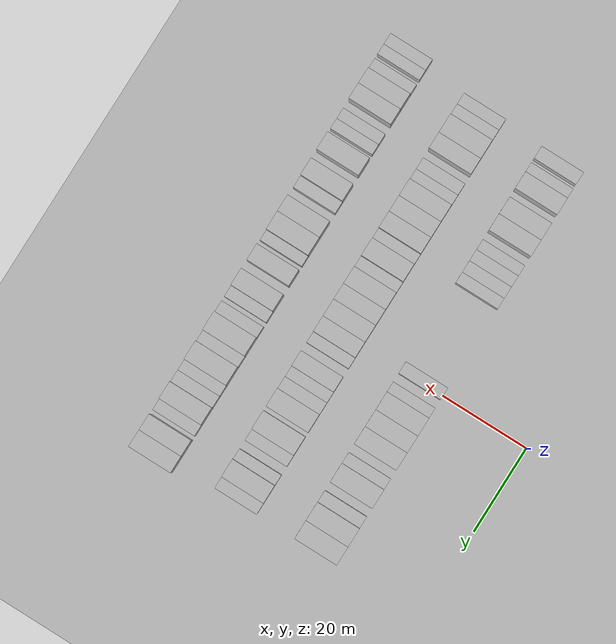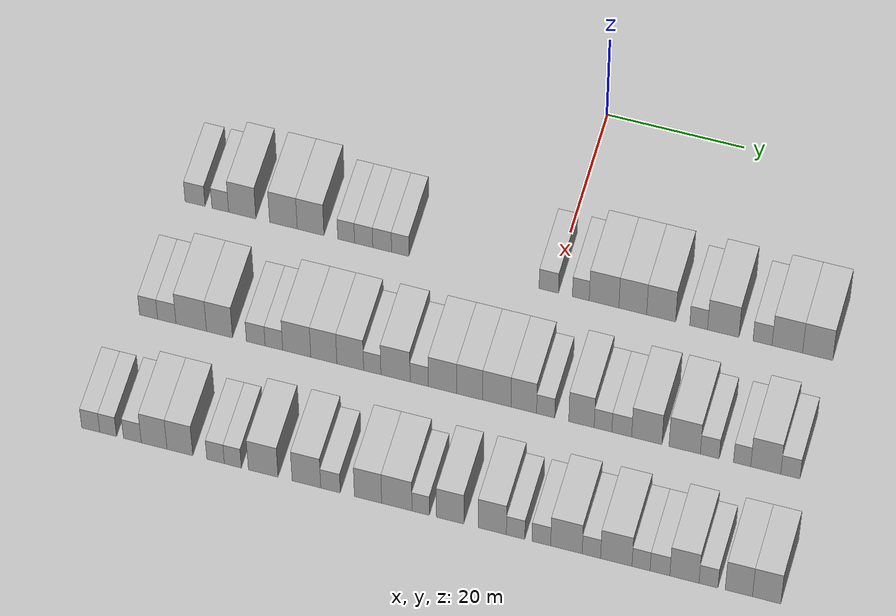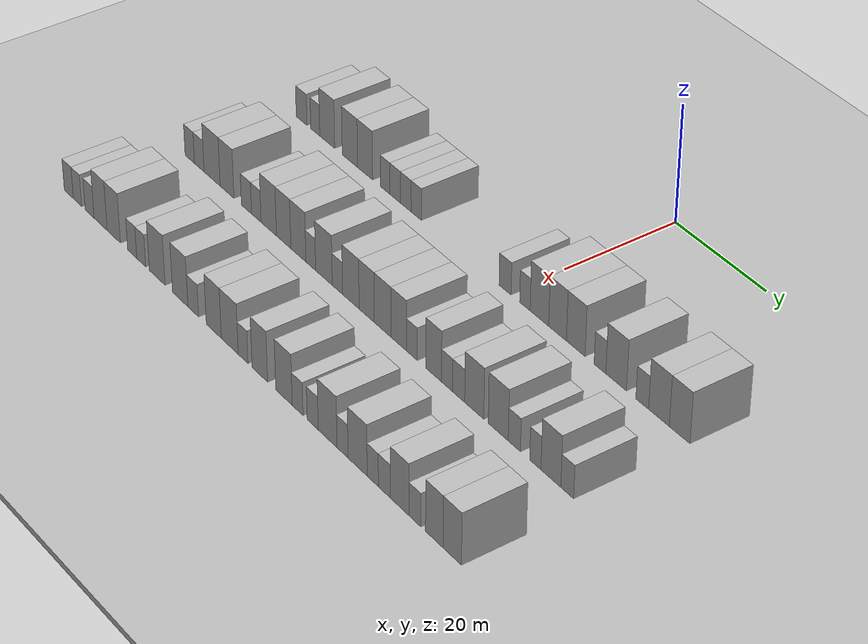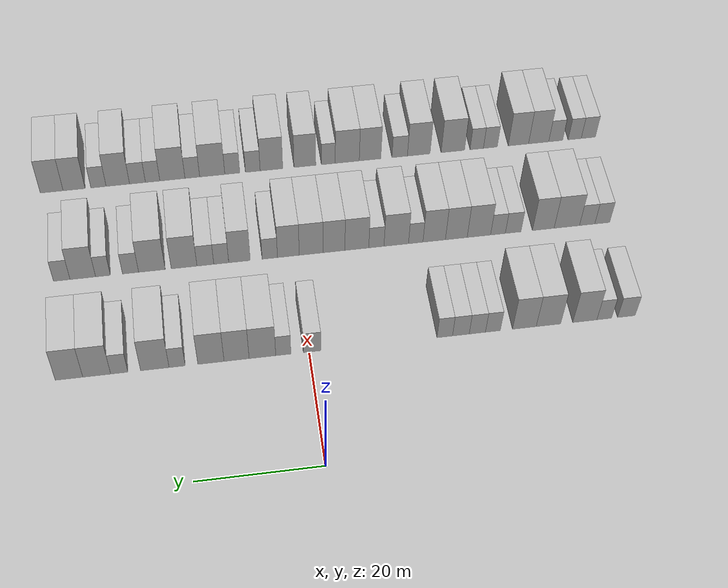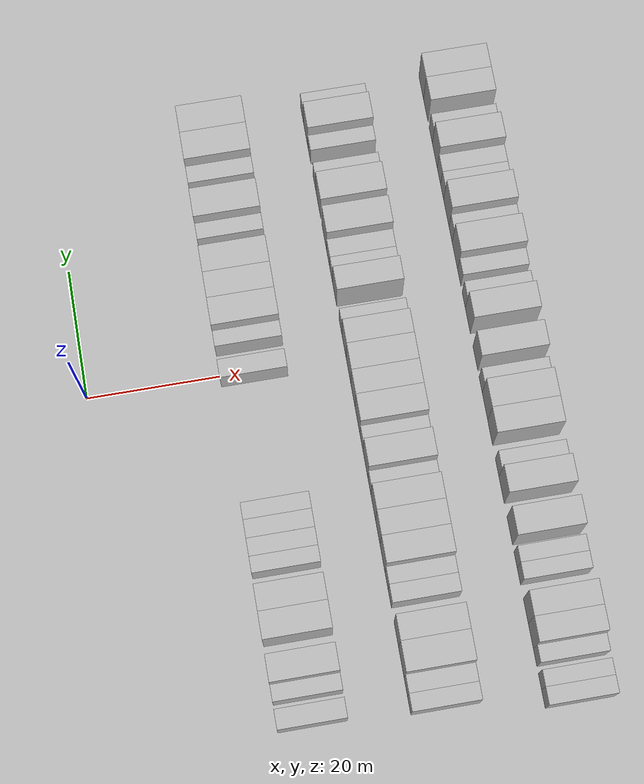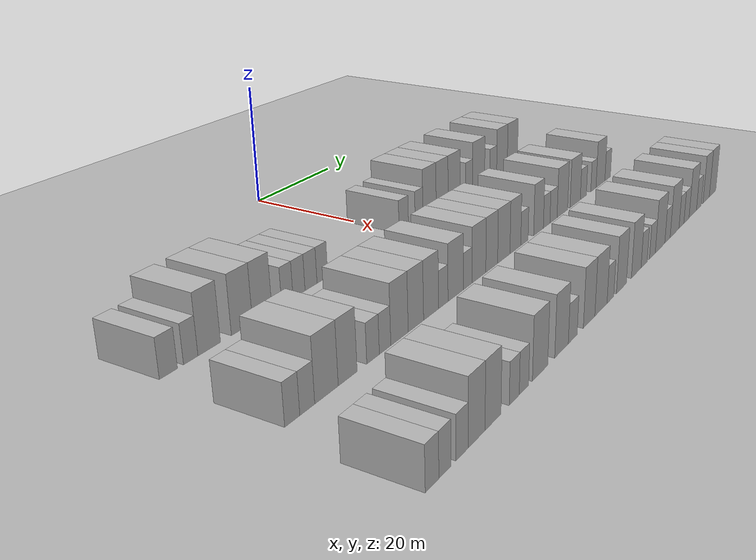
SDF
<sdf version="1.6">
 <world name="default">
  <include><name>ground_plane_1</name><uri>model://HANNAS_ground_plane</uri></include>
  <include>
   <name>ground_plane_2</name>
   <uri>model://HANNAS_ground_plane</uri>
   <pose>100 0 0  0 0 0</pose>
  </include>
  <model name="building_47">
   <static>1</static>
   <pose>25.0000 -51.7509 0 0.000000 0.000000 0.000000</pose>
   <link name="link">
    <pose>0 0 3.00 0 0 0</pose>
    <collision name="collision"><geometry><box><size>10.0000 2.9255 6.0000</size></box></geometry></collision>
    <visual name="visual">
     <cast_shadows>0</cast_shadows>
     <geometry><box><size>10.0000 2.9255 6.0000</size></box></geometry>
     <material>
      <script>
       <uri>model://HANNAS_wall/materials/scripts</uri>
       <uri>model://HANNAS_wall/materials/textures</uri>
       <name>vrc/HANNAS_wall</name>
      </script>
     </material>
    </visual>
   </link>
  </model>
  <model name="building_48">
   <static>1</static>
   <pose>25.0000 -48.0663 0 0.000000 0.000000 0.000000</pose>
   <link name="link">
    <pose>0 0 3.00 0 0 0</pose>
    <collision name="collision"><geometry><box><size>10.0000 2.4438 6.0000</size></box></geometry></collision>
    <visual name="visual">
     <cast_shadows>0</cast_shadows>
     <geometry><box><size>10.0000 2.4438 6.0000</size></box></geometry>
     <material>
      <script>
       <uri>model://HANNAS_wall/materials/scripts</uri>
       <uri>model://HANNAS_wall/materials/textures</uri>
       <name>vrc/HANNAS_wall</name>
      </script>
     </material>
    </visual>
   </link>
  </model>
  <model name="building_49">
   <static>1</static>
   <pose>25.0000 -44.8534 0 0.000000 0.000000 0.000000</pose>
   <link name="link">
    <pose>0 0 4.50 0 0 0</pose>
    <collision name="collision"><geometry><box><size>10.0000 3.9821 9.0000</size></box></geometry></collision>
    <visual name="visual">
     <cast_shadows>0</cast_shadows>
     <geometry><box><size>10.0000 3.9821 9.0000</size></box></geometry>
     <material>
      <script>
       <uri>model://HANNAS_wall/materials/scripts</uri>
       <uri>model://HANNAS_wall/materials/textures</uri>
       <name>vrc/HANNAS_wall</name>
      </script>
     </material>
    </visual>
   </link>
  </model>
  <model name="building_50">
   <static>1</static>
   <pose>25.0000 -38.8466 0 0.000000 0.000000 0.000000</pose>
   <link name="link">
    <pose>0 0 4.50 0 0 0</pose>
    <collision name="collision"><geometry><box><size>10.0000 4.0314 9.0000</size></box></geometry></collision>
    <visual name="visual">
     <cast_shadows>0</cast_shadows>
     <geometry><box><size>10.0000 4.0314 9.0000</size></box></geometry>
     <material>
      <script>
       <uri>model://HANNAS_wall/materials/scripts</uri>
       <uri>model://HANNAS_wall/materials/textures</uri>
       <name>vrc/HANNAS_wall</name>
      </script>
     </material>
    </visual>
   </link>
  </model>
  <model name="building_51">
   <static>1</static>
   <pose>25.0000 -34.8790 0 0.000000 0.000000 0.000000</pose>
   <link name="link">
    <pose>0 0 4.50 0 0 0</pose>
    <collision name="collision"><geometry><box><size>10.0000 3.9037 9.0000</size></box></geometry></collision>
    <visual name="visual">
     <cast_shadows>0</cast_shadows>
     <geometry><box><size>10.0000 3.9037 9.0000</size></box></geometry>
     <material>
      <script>
       <uri>model://HANNAS_wall/materials/scripts</uri>
       <uri>model://HANNAS_wall/materials/textures</uri>
       <name>vrc/HANNAS_wall</name>
      </script>
     </material>
    </visual>
   </link>
  </model>
  <model name="building_52">
   <static>1</static>
   <pose>25.0000 -29.7062 0 0.000000 0.000000 0.000000</pose>
   <link name="link">
    <pose>0 0 3.00 0 0 0</pose>
    <collision name="collision"><geometry><box><size>10.0000 2.4420 6.0000</size></box></geometry></collision>
    <visual name="visual">
     <cast_shadows>0</cast_shadows>
     <geometry><box><size>10.0000 2.4420 6.0000</size></box></geometry>
     <material>
      <script>
       <uri>model://HANNAS_wall/materials/scripts</uri>
       <uri>model://HANNAS_wall/materials/textures</uri>
       <name>vrc/HANNAS_wall</name>
      </script>
     </material>
    </visual>
   </link>
  </model>
  <model name="building_53">
   <static>1</static>
   <pose>25.0000 -27.1594 0 0.000000 0.000000 0.000000</pose>
   <link name="link">
    <pose>0 0 3.00 0 0 0</pose>
    <collision name="collision"><geometry><box><size>10.0000 2.6516 6.0000</size></box></geometry></collision>
    <visual name="visual">
     <cast_shadows>0</cast_shadows>
     <geometry><box><size>10.0000 2.6516 6.0000</size></box></geometry>
     <material>
      <script>
       <uri>model://HANNAS_wall/materials/scripts</uri>
       <uri>model://HANNAS_wall/materials/textures</uri>
       <name>vrc/HANNAS_wall</name>
      </script>
     </material>
    </visual>
   </link>
  </model>
  <model name="building_54">
   <static>1</static>
   <pose>25.0000 -24.4721 0 0.000000 0.000000 0.000000</pose>
   <link name="link">
    <pose>0 0 3.00 0 0 0</pose>
    <collision name="collision"><geometry><box><size>10.0000 2.7231 6.0000</size></box></geometry></collision>
    <visual name="visual">
     <cast_shadows>0</cast_shadows>
     <geometry><box><size>10.0000 2.7231 6.0000</size></box></geometry>
     <material>
      <script>
       <uri>model://HANNAS_wall/materials/scripts</uri>
       <uri>model://HANNAS_wall/materials/textures</uri>
       <name>vrc/HANNAS_wall</name>
      </script>
     </material>
    </visual>
   </link>
  </model>
  <model name="building_55">
   <static>1</static>
   <pose>25.0000 -21.8469 0 0.000000 0.000000 0.000000</pose>
   <link name="link">
    <pose>0 0 3.00 0 0 0</pose>
    <collision name="collision"><geometry><box><size>10.0000 2.5272 6.0000</size></box></geometry></collision>
    <visual name="visual">
     <cast_shadows>0</cast_shadows>
     <geometry><box><size>10.0000 2.5272 6.0000</size></box></geometry>
     <material>
      <script>
       <uri>model://HANNAS_wall/materials/scripts</uri>
       <uri>model://HANNAS_wall/materials/textures</uri>
       <name>vrc/HANNAS_wall</name>
      </script>
     </material>
    </visual>
   </link>
  </model>
  <model name="building_56">
   <static>1</static>
   <pose>25.0000 -0.3898 0 0.000000 0.000000 0.000000</pose>
   <link name="link">
    <pose>0 0 3.00 0 0 0</pose>
    <collision name="collision"><geometry><box><size>10.0000 2.7957 6.0000</size></box></geometry></collision>
    <visual name="visual">
     <cast_shadows>0</cast_shadows>
     <geometry><box><size>10.0000 2.7957 6.0000</size></box></geometry>
     <material>
      <script>
       <uri>model://HANNAS_wall/materials/scripts</uri>
       <uri>model://HANNAS_wall/materials/textures</uri>
       <name>vrc/HANNAS_wall</name>
      </script>
     </material>
    </visual>
   </link>
  </model>
  <model name="building_57">
   <static>1</static>
   <pose>25.0000 4.2181 0 0.000000 0.000000 0.000000</pose>
   <link name="link">
    <pose>0 0 3.00 0 0 0</pose>
    <collision name="collision"><geometry><box><size>10.0000 2.4200 6.0000</size></box></geometry></collision>
    <visual name="visual">
     <cast_shadows>0</cast_shadows>
     <geometry><box><size>10.0000 2.4200 6.0000</size></box></geometry>
     <material>
      <script>
       <uri>model://HANNAS_wall/materials/scripts</uri>
       <uri>model://HANNAS_wall/materials/textures</uri>
       <name>vrc/HANNAS_wall</name>
      </script>
     </material>
    </visual>
   </link>
  </model>
  <model name="building_58">
   <static>1</static>
   <pose>25.0000 7.5503 0 0.000000 0.000000 0.000000</pose>
   <link name="link">
    <pose>0 0 4.50 0 0 0</pose>
    <collision name="collision"><geometry><box><size>10.0000 4.2445 9.0000</size></box></geometry></collision>
    <visual name="visual">
     <cast_shadows>0</cast_shadows>
     <geometry><box><size>10.0000 4.2445 9.0000</size></box></geometry>
     <material>
      <script>
       <uri>model://HANNAS_wall/materials/scripts</uri>
       <uri>model://HANNAS_wall/materials/textures</uri>
       <name>vrc/HANNAS_wall</name>
      </script>
     </material>
    </visual>
   </link>
  </model>
  <model name="building_59">
   <static>1</static>
   <pose>25.0000 11.6644 0 0.000000 0.000000 0.000000</pose>
   <link name="link">
    <pose>0 0 4.50 0 0 0</pose>
    <collision name="collision"><geometry><box><size>10.0000 3.9837 9.0000</size></box></geometry></collision>
    <visual name="visual">
     <cast_shadows>0</cast_shadows>
     <geometry><box><size>10.0000 3.9837 9.0000</size></box></geometry>
     <material>
      <script>
       <uri>model://HANNAS_wall/materials/scripts</uri>
       <uri>model://HANNAS_wall/materials/textures</uri>
       <name>vrc/HANNAS_wall</name>
      </script>
     </material>
    </visual>
   </link>
  </model>
  <model name="building_60">
   <static>1</static>
   <pose>25.0000 15.7348 0 0.000000 0.000000 0.000000</pose>
   <link name="link">
    <pose>0 0 4.50 0 0 0</pose>
    <collision name="collision"><geometry><box><size>10.0000 4.1571 9.0000</size></box></geometry></collision>
    <visual name="visual">
     <cast_shadows>0</cast_shadows>
     <geometry><box><size>10.0000 4.1571 9.0000</size></box></geometry>
     <material>
      <script>
       <uri>model://HANNAS_wall/materials/scripts</uri>
       <uri>model://HANNAS_wall/materials/textures</uri>
       <name>vrc/HANNAS_wall</name>
      </script>
     </material>
    </visual>
   </link>
  </model>
  <model name="building_61">
   <static>1</static>
   <pose>25.0000 21.0873 0 0.000000 0.000000 0.000000</pose>
   <link name="link">
    <pose>0 0 3.00 0 0 0</pose>
    <collision name="collision"><geometry><box><size>10.0000 2.5480 6.0000</size></box></geometry></collision>
    <visual name="visual">
     <cast_shadows>0</cast_shadows>
     <geometry><box><size>10.0000 2.5480 6.0000</size></box></geometry>
     <material>
      <script>
       <uri>model://HANNAS_wall/materials/scripts</uri>
       <uri>model://HANNAS_wall/materials/textures</uri>
       <name>vrc/HANNAS_wall</name>
      </script>
     </material>
    </visual>
   </link>
  </model>
  <model name="building_62">
   <static>1</static>
   <pose>25.0000 24.6056 0 0.000000 0.000000 0.000000</pose>
   <link name="link">
    <pose>0 0 4.50 0 0 0</pose>
    <collision name="collision"><geometry><box><size>10.0000 4.4885 9.0000</size></box></geometry></collision>
    <visual name="visual">
     <cast_shadows>0</cast_shadows>
     <geometry><box><size>10.0000 4.4885 9.0000</size></box></geometry>
     <material>
      <script>
       <uri>model://HANNAS_wall/materials/scripts</uri>
       <uri>model://HANNAS_wall/materials/textures</uri>
       <name>vrc/HANNAS_wall</name>
      </script>
     </material>
    </visual>
   </link>
  </model>
  <model name="building_63">
   <static>1</static>
   <pose>25.0000 30.2030 0 0.000000 0.000000 0.000000</pose>
   <link name="link">
    <pose>0 0 3.00 0 0 0</pose>
    <collision name="collision"><geometry><box><size>10.0000 2.7063 6.0000</size></box></geometry></collision>
    <visual name="visual">
     <cast_shadows>0</cast_shadows>
     <geometry><box><size>10.0000 2.7063 6.0000</size></box></geometry>
     <material>
      <script>
       <uri>model://HANNAS_wall/materials/scripts</uri>
       <uri>model://HANNAS_wall/materials/textures</uri>
       <name>vrc/HANNAS_wall</name>
      </script>
     </material>
    </visual>
   </link>
  </model>
  <model name="building_64">
   <static>1</static>
   <pose>25.0000 33.7326 0 0.000000 0.000000 0.000000</pose>
   <link name="link">
    <pose>0 0 4.50 0 0 0</pose>
    <collision name="collision"><geometry><box><size>10.0000 4.3529 9.0000</size></box></geometry></collision>
    <visual name="visual">
     <cast_shadows>0</cast_shadows>
     <geometry><box><size>10.0000 4.3529 9.0000</size></box></geometry>
     <material>
      <script>
       <uri>model://HANNAS_wall/materials/scripts</uri>
       <uri>model://HANNAS_wall/materials/textures</uri>
       <name>vrc/HANNAS_wall</name>
      </script>
     </material>
    </visual>
   </link>
  </model>
  <model name="building_65">
   <static>1</static>
   <pose>25.0000 38.0556 0 0.000000 0.000000 0.000000</pose>
   <link name="link">
    <pose>0 0 4.50 0 0 0</pose>
    <collision name="collision"><geometry><box><size>10.0000 4.2929 9.0000</size></box></geometry></collision>
    <visual name="visual">
     <cast_shadows>0</cast_shadows>
     <geometry><box><size>10.0000 4.2929 9.0000</size></box></geometry>
     <material>
      <script>
       <uri>model://HANNAS_wall/materials/scripts</uri>
       <uri>model://HANNAS_wall/materials/textures</uri>
       <name>vrc/HANNAS_wall</name>
      </script>
     </material>
    </visual>
   </link>
  </model>
  <model name="building_165">
   <static>1</static>
   <pose>44.0000 -52.6446 0 0.000000 0.000000 0.000000</pose>
   <link name="link">
    <pose>0 0 3.00 0 0 0</pose>
    <collision name="collision"><geometry><box><size>10.0000 2.6040 6.0000</size></box></geometry></collision>
    <visual name="visual">
     <cast_shadows>0</cast_shadows>
     <geometry><box><size>10.0000 2.6040 6.0000</size></box></geometry>
     <material>
      <script>
       <uri>model://HANNAS_wall/materials/scripts</uri>
       <uri>model://HANNAS_wall/materials/textures</uri>
       <name>vrc/HANNAS_wall</name>
      </script>
     </material>
    </visual>
   </link>
  </model>
  <model name="building_166">
   <static>1</static>
   <pose>44.0000 -50.0094 0 0.000000 0.000000 0.000000</pose>
   <link name="link">
    <pose>0 0 3.00 0 0 0</pose>
    <collision name="collision"><geometry><box><size>10.0000 2.6663 6.0000</size></box></geometry></collision>
    <visual name="visual">
     <cast_shadows>0</cast_shadows>
     <geometry><box><size>10.0000 2.6663 6.0000</size></box></geometry>
     <material>
      <script>
       <uri>model://HANNAS_wall/materials/scripts</uri>
       <uri>model://HANNAS_wall/materials/textures</uri>
       <name>vrc/HANNAS_wall</name>
      </script>
     </material>
    </visual>
   </link>
  </model>
  <model name="building_167">
   <static>1</static>
   <pose>44.0000 -46.4680 0 0.000000 0.000000 0.000000</pose>
   <link name="link">
    <pose>0 0 4.50 0 0 0</pose>
    <collision name="collision"><geometry><box><size>10.0000 4.4165 9.0000</size></box></geometry></collision>
    <visual name="visual">
     <cast_shadows>0</cast_shadows>
     <geometry><box><size>10.0000 4.4165 9.0000</size></box></geometry>
     <material>
      <script>
       <uri>model://HANNAS_wall/materials/scripts</uri>
       <uri>model://HANNAS_wall/materials/textures</uri>
       <name>vrc/HANNAS_wall</name>
      </script>
     </material>
    </visual>
   </link>
  </model>
  <model name="building_168">
   <static>1</static>
   <pose>44.0000 -42.3781 0 0.000000 0.000000 0.000000</pose>
   <link name="link">
    <pose>0 0 4.50 0 0 0</pose>
    <collision name="collision"><geometry><box><size>10.0000 3.7632 9.0000</size></box></geometry></collision>
    <visual name="visual">
     <cast_shadows>0</cast_shadows>
     <geometry><box><size>10.0000 3.7632 9.0000</size></box></geometry>
     <material>
      <script>
       <uri>model://HANNAS_wall/materials/scripts</uri>
       <uri>model://HANNAS_wall/materials/textures</uri>
       <name>vrc/HANNAS_wall</name>
      </script>
     </material>
    </visual>
   </link>
  </model>
  <model name="building_169">
   <static>1</static>
   <pose>44.0000 -37.1449 0 0.000000 0.000000 0.000000</pose>
   <link name="link">
    <pose>0 0 3.00 0 0 0</pose>
    <collision name="collision"><geometry><box><size>10.0000 2.7031 6.0000</size></box></geometry></collision>
    <visual name="visual">
     <cast_shadows>0</cast_shadows>
     <geometry><box><size>10.0000 2.7031 6.0000</size></box></geometry>
     <material>
      <script>
       <uri>model://HANNAS_wall/materials/scripts</uri>
       <uri>model://HANNAS_wall/materials/textures</uri>
       <name>vrc/HANNAS_wall</name>
      </script>
     </material>
    </visual>
   </link>
  </model>
  <model name="building_170">
   <static>1</static>
   <pose>44.0000 -34.5231 0 0.000000 0.000000 0.000000</pose>
   <link name="link">
    <pose>0 0 3.00 0 0 0</pose>
    <collision name="collision"><geometry><box><size>10.0000 2.5406 6.0000</size></box></geometry></collision>
    <visual name="visual">
     <cast_shadows>0</cast_shadows>
     <geometry><box><size>10.0000 2.5406 6.0000</size></box></geometry>
     <material>
      <script>
       <uri>model://HANNAS_wall/materials/scripts</uri>
       <uri>model://HANNAS_wall/materials/textures</uri>
       <name>vrc/HANNAS_wall</name>
      </script>
     </material>
    </visual>
   </link>
  </model>
  <model name="building_171">
   <static>1</static>
   <pose>44.0000 -31.2356 0 0.000000 0.000000 0.000000</pose>
   <link name="link">
    <pose>0 0 4.50 0 0 0</pose>
    <collision name="collision"><geometry><box><size>10.0000 4.0344 9.0000</size></box></geometry></collision>
    <visual name="visual">
     <cast_shadows>0</cast_shadows>
     <geometry><box><size>10.0000 4.0344 9.0000</size></box></geometry>
     <material>
      <script>
       <uri>model://HANNAS_wall/materials/scripts</uri>
       <uri>model://HANNAS_wall/materials/textures</uri>
       <name>vrc/HANNAS_wall</name>
      </script>
     </material>
    </visual>
   </link>
  </model>
  <model name="building_172">
   <static>1</static>
   <pose>44.0000 -27.3459 0 0.000000 0.000000 0.000000</pose>
   <link name="link">
    <pose>0 0 4.50 0 0 0</pose>
    <collision name="collision"><geometry><box><size>10.0000 3.7450 9.0000</size></box></geometry></collision>
    <visual name="visual">
     <cast_shadows>0</cast_shadows>
     <geometry><box><size>10.0000 3.7450 9.0000</size></box></geometry>
     <material>
      <script>
       <uri>model://HANNAS_wall/materials/scripts</uri>
       <uri>model://HANNAS_wall/materials/textures</uri>
       <name>vrc/HANNAS_wall</name>
      </script>
     </material>
    </visual>
   </link>
  </model>
  <model name="building_173">
   <static>1</static>
   <pose>44.0000 -23.5475 0 0.000000 0.000000 0.000000</pose>
   <link name="link">
    <pose>0 0 4.50 0 0 0</pose>
    <collision name="collision"><geometry><box><size>10.0000 3.8520 9.0000</size></box></geometry></collision>
    <visual name="visual">
     <cast_shadows>0</cast_shadows>
     <geometry><box><size>10.0000 3.8520 9.0000</size></box></geometry>
     <material>
      <script>
       <uri>model://HANNAS_wall/materials/scripts</uri>
       <uri>model://HANNAS_wall/materials/textures</uri>
       <name>vrc/HANNAS_wall</name>
      </script>
     </material>
    </visual>
   </link>
  </model>
  <model name="building_174">
   <static>1</static>
   <pose>44.0000 -20.3873 0 0.000000 0.000000 0.000000</pose>
   <link name="link">
    <pose>0 0 3.00 0 0 0</pose>
    <collision name="collision"><geometry><box><size>10.0000 2.4683 6.0000</size></box></geometry></collision>
    <visual name="visual">
     <cast_shadows>0</cast_shadows>
     <geometry><box><size>10.0000 2.4683 6.0000</size></box></geometry>
     <material>
      <script>
       <uri>model://HANNAS_wall/materials/scripts</uri>
       <uri>model://HANNAS_wall/materials/textures</uri>
       <name>vrc/HANNAS_wall</name>
      </script>
     </material>
    </visual>
   </link>
  </model>
  <model name="building_175">
   <static>1</static>
   <pose>44.0000 -17.0578 0 0.000000 0.000000 0.000000</pose>
   <link name="link">
    <pose>0 0 4.50 0 0 0</pose>
    <collision name="collision"><geometry><box><size>10.0000 4.1907 9.0000</size></box></geometry></collision>
    <visual name="visual">
     <cast_shadows>0</cast_shadows>
     <geometry><box><size>10.0000 4.1907 9.0000</size></box></geometry>
     <material>
      <script>
       <uri>model://HANNAS_wall/materials/scripts</uri>
       <uri>model://HANNAS_wall/materials/textures</uri>
       <name>vrc/HANNAS_wall</name>
      </script>
     </material>
    </visual>
   </link>
  </model>
  <model name="building_176">
   <static>1</static>
   <pose>44.0000 -13.6695 0 0.000000 0.000000 0.000000</pose>
   <link name="link">
    <pose>0 0 3.00 0 0 0</pose>
    <collision name="collision"><geometry><box><size>10.0000 2.5860 6.0000</size></box></geometry></collision>
    <visual name="visual">
     <cast_shadows>0</cast_shadows>
     <geometry><box><size>10.0000 2.5860 6.0000</size></box></geometry>
     <material>
      <script>
       <uri>model://HANNAS_wall/materials/scripts</uri>
       <uri>model://HANNAS_wall/materials/textures</uri>
       <name>vrc/HANNAS_wall</name>
      </script>
     </material>
    </visual>
   </link>
  </model>
  <model name="building_177">
   <static>1</static>
   <pose>44.0000 -10.3403 0 0.000000 0.000000 0.000000</pose>
   <link name="link">
    <pose>0 0 4.50 0 0 0</pose>
    <collision name="collision"><geometry><box><size>10.0000 4.0724 9.0000</size></box></geometry></collision>
    <visual name="visual">
     <cast_shadows>0</cast_shadows>
     <geometry><box><size>10.0000 4.0724 9.0000</size></box></geometry>
     <material>
      <script>
       <uri>model://HANNAS_wall/materials/scripts</uri>
       <uri>model://HANNAS_wall/materials/textures</uri>
       <name>vrc/HANNAS_wall</name>
      </script>
     </material>
    </visual>
   </link>
  </model>
  <model name="building_178">
   <static>1</static>
   <pose>44.0000 -6.4540 0 0.000000 0.000000 0.000000</pose>
   <link name="link">
    <pose>0 0 4.50 0 0 0</pose>
    <collision name="collision"><geometry><box><size>10.0000 3.7000 9.0000</size></box></geometry></collision>
    <visual name="visual">
     <cast_shadows>0</cast_shadows>
     <geometry><box><size>10.0000 3.7000 9.0000</size></box></geometry>
     <material>
      <script>
       <uri>model://HANNAS_wall/materials/scripts</uri>
       <uri>model://HANNAS_wall/materials/textures</uri>
       <name>vrc/HANNAS_wall</name>
      </script>
     </material>
    </visual>
   </link>
  </model>
  <model name="building_179">
   <static>1</static>
   <pose>44.0000 -2.5977 0 0.000000 0.000000 0.000000</pose>
   <link name="link">
    <pose>0 0 4.50 0 0 0</pose>
    <collision name="collision"><geometry><box><size>10.0000 4.0126 9.0000</size></box></geometry></collision>
    <visual name="visual">
     <cast_shadows>0</cast_shadows>
     <geometry><box><size>10.0000 4.0126 9.0000</size></box></geometry>
     <material>
      <script>
       <uri>model://HANNAS_wall/materials/scripts</uri>
       <uri>model://HANNAS_wall/materials/textures</uri>
       <name>vrc/HANNAS_wall</name>
      </script>
     </material>
    </visual>
   </link>
  </model>
  <model name="building_180">
   <static>1</static>
   <pose>44.0000 1.2405 0 0.000000 0.000000 0.000000</pose>
   <link name="link">
    <pose>0 0 4.50 0 0 0</pose>
    <collision name="collision"><geometry><box><size>10.0000 3.6640 9.0000</size></box></geometry></collision>
    <visual name="visual">
     <cast_shadows>0</cast_shadows>
     <geometry><box><size>10.0000 3.6640 9.0000</size></box></geometry>
     <material>
      <script>
       <uri>model://HANNAS_wall/materials/scripts</uri>
       <uri>model://HANNAS_wall/materials/textures</uri>
       <name>vrc/HANNAS_wall</name>
      </script>
     </material>
    </visual>
   </link>
  </model>
  <model name="building_181">
   <static>1</static>
   <pose>44.0000 4.3572 0 0.000000 0.000000 0.000000</pose>
   <link name="link">
    <pose>0 0 3.00 0 0 0</pose>
    <collision name="collision"><geometry><box><size>10.0000 2.5694 6.0000</size></box></geometry></collision>
    <visual name="visual">
     <cast_shadows>0</cast_shadows>
     <geometry><box><size>10.0000 2.5694 6.0000</size></box></geometry>
     <material>
      <script>
       <uri>model://HANNAS_wall/materials/scripts</uri>
       <uri>model://HANNAS_wall/materials/textures</uri>
       <name>vrc/HANNAS_wall</name>
      </script>
     </material>
    </visual>
   </link>
  </model>
  <model name="building_182">
   <static>1</static>
   <pose>44.0000 9.4450 0 0.000000 0.000000 0.000000</pose>
   <link name="link">
    <pose>0 0 4.50 0 0 0</pose>
    <collision name="collision"><geometry><box><size>10.0000 3.6063 9.0000</size></box></geometry></collision>
    <visual name="visual">
     <cast_shadows>0</cast_shadows>
     <geometry><box><size>10.0000 3.6063 9.0000</size></box></geometry>
     <material>
      <script>
       <uri>model://HANNAS_wall/materials/scripts</uri>
       <uri>model://HANNAS_wall/materials/textures</uri>
       <name>vrc/HANNAS_wall</name>
      </script>
     </material>
    </visual>
   </link>
  </model>
  <model name="building_183">
   <static>1</static>
   <pose>44.0000 12.4975 0 0.000000 0.000000 0.000000</pose>
   <link name="link">
    <pose>0 0 3.00 0 0 0</pose>
    <collision name="collision"><geometry><box><size>10.0000 2.4986 6.0000</size></box></geometry></collision>
    <visual name="visual">
     <cast_shadows>0</cast_shadows>
     <geometry><box><size>10.0000 2.4986 6.0000</size></box></geometry>
     <material>
      <script>
       <uri>model://HANNAS_wall/materials/scripts</uri>
       <uri>model://HANNAS_wall/materials/textures</uri>
       <name>vrc/HANNAS_wall</name>
      </script>
     </material>
    </visual>
   </link>
  </model>
  <model name="building_184">
   <static>1</static>
   <pose>44.0000 15.1494 0 0.000000 0.000000 0.000000</pose>
   <link name="link">
    <pose>0 0 3.00 0 0 0</pose>
    <collision name="collision"><geometry><box><size>10.0000 2.8052 6.0000</size></box></geometry></collision>
    <visual name="visual">
     <cast_shadows>0</cast_shadows>
     <geometry><box><size>10.0000 2.8052 6.0000</size></box></geometry>
     <material>
      <script>
       <uri>model://HANNAS_wall/materials/scripts</uri>
       <uri>model://HANNAS_wall/materials/textures</uri>
       <name>vrc/HANNAS_wall</name>
      </script>
     </material>
    </visual>
   </link>
  </model>
  <model name="building_185">
   <static>1</static>
   <pose>44.0000 18.6953 0 0.000000 0.000000 0.000000</pose>
   <link name="link">
    <pose>0 0 4.50 0 0 0</pose>
    <collision name="collision"><geometry><box><size>10.0000 4.2866 9.0000</size></box></geometry></collision>
    <visual name="visual">
     <cast_shadows>0</cast_shadows>
     <geometry><box><size>10.0000 4.2866 9.0000</size></box></geometry>
     <material>
      <script>
       <uri>model://HANNAS_wall/materials/scripts</uri>
       <uri>model://HANNAS_wall/materials/textures</uri>
       <name>vrc/HANNAS_wall</name>
      </script>
     </material>
    </visual>
   </link>
  </model>
  <model name="building_186">
   <static>1</static>
   <pose>44.0000 24.0477 0 0.000000 0.000000 0.000000</pose>
   <link name="link">
    <pose>0 0 4.50 0 0 0</pose>
    <collision name="collision"><geometry><box><size>10.0000 4.4184 9.0000</size></box></geometry></collision>
    <visual name="visual">
     <cast_shadows>0</cast_shadows>
     <geometry><box><size>10.0000 4.4184 9.0000</size></box></geometry>
     <material>
      <script>
       <uri>model://HANNAS_wall/materials/scripts</uri>
       <uri>model://HANNAS_wall/materials/textures</uri>
       <name>vrc/HANNAS_wall</name>
      </script>
     </material>
    </visual>
   </link>
  </model>
  <model name="building_187">
   <static>1</static>
   <pose>44.0000 27.5904 0 0.000000 0.000000 0.000000</pose>
   <link name="link">
    <pose>0 0 3.00 0 0 0</pose>
    <collision name="collision"><geometry><box><size>10.0000 2.6670 6.0000</size></box></geometry></collision>
    <visual name="visual">
     <cast_shadows>0</cast_shadows>
     <geometry><box><size>10.0000 2.6670 6.0000</size></box></geometry>
     <material>
      <script>
       <uri>model://HANNAS_wall/materials/scripts</uri>
       <uri>model://HANNAS_wall/materials/textures</uri>
       <name>vrc/HANNAS_wall</name>
      </script>
     </material>
    </visual>
   </link>
  </model>
  <model name="building_188">
   <static>1</static>
   <pose>44.0000 32.1417 0 0.000000 0.000000 0.000000</pose>
   <link name="link">
    <pose>0 0 3.00 0 0 0</pose>
    <collision name="collision"><geometry><box><size>10.0000 2.4355 6.0000</size></box></geometry></collision>
    <visual name="visual">
     <cast_shadows>0</cast_shadows>
     <geometry><box><size>10.0000 2.4355 6.0000</size></box></geometry>
     <material>
      <script>
       <uri>model://HANNAS_wall/materials/scripts</uri>
       <uri>model://HANNAS_wall/materials/textures</uri>
       <name>vrc/HANNAS_wall</name>
      </script>
     </material>
    </visual>
   </link>
  </model>
  <model name="building_189">
   <static>1</static>
   <pose>44.0000 35.4664 0 0.000000 0.000000 0.000000</pose>
   <link name="link">
    <pose>0 0 4.50 0 0 0</pose>
    <collision name="collision"><geometry><box><size>10.0000 4.2139 9.0000</size></box></geometry></collision>
    <visual name="visual">
     <cast_shadows>0</cast_shadows>
     <geometry><box><size>10.0000 4.2139 9.0000</size></box></geometry>
     <material>
      <script>
       <uri>model://HANNAS_wall/materials/scripts</uri>
       <uri>model://HANNAS_wall/materials/textures</uri>
       <name>vrc/HANNAS_wall</name>
      </script>
     </material>
    </visual>
   </link>
  </model>
  <model name="building_190">
   <static>1</static>
   <pose>44.0000 38.9302 0 0.000000 0.000000 0.000000</pose>
   <link name="link">
    <pose>0 0 3.00 0 0 0</pose>
    <collision name="collision"><geometry><box><size>10.0000 2.7136 6.0000</size></box></geometry></collision>
    <visual name="visual">
     <cast_shadows>0</cast_shadows>
     <geometry><box><size>10.0000 2.7136 6.0000</size></box></geometry>
     <material>
      <script>
       <uri>model://HANNAS_wall/materials/scripts</uri>
       <uri>model://HANNAS_wall/materials/textures</uri>
       <name>vrc/HANNAS_wall</name>
      </script>
     </material>
    </visual>
   </link>
  </model>
  <model name="building_282">
   <static>1</static>
   <pose>63.0000 -54.9906 0 0.000000 0.000000 0.000000</pose>
   <link name="link">
    <pose>0 0 3.00 0 0 0</pose>
    <collision name="collision"><geometry><box><size>10.0000 2.5886 6.0000</size></box></geometry></collision>
    <visual name="visual">
     <cast_shadows>0</cast_shadows>
     <geometry><box><size>10.0000 2.5886 6.0000</size></box></geometry>
     <material>
      <script>
       <uri>model://HANNAS_wall/materials/scripts</uri>
       <uri>model://HANNAS_wall/materials/textures</uri>
       <name>vrc/HANNAS_wall</name>
      </script>
     </material>
    </visual>
   </link>
  </model>
  <model name="building_283">
   <static>1</static>
   <pose>63.0000 -52.4955 0 0.000000 0.000000 0.000000</pose>
   <link name="link">
    <pose>0 0 3.00 0 0 0</pose>
    <collision name="collision"><geometry><box><size>10.0000 2.4016 6.0000</size></box></geometry></collision>
    <visual name="visual">
     <cast_shadows>0</cast_shadows>
     <geometry><box><size>10.0000 2.4016 6.0000</size></box></geometry>
     <material>
      <script>
       <uri>model://HANNAS_wall/materials/scripts</uri>
       <uri>model://HANNAS_wall/materials/textures</uri>
       <name>vrc/HANNAS_wall</name>
      </script>
     </material>
    </visual>
   </link>
  </model>
  <model name="building_284">
   <static>1</static>
   <pose>63.0000 -49.0220 0 0.000000 0.000000 0.000000</pose>
   <link name="link">
    <pose>0 0 3.00 0 0 0</pose>
    <collision name="collision"><geometry><box><size>10.0000 2.5454 6.0000</size></box></geometry></collision>
    <visual name="visual">
     <cast_shadows>0</cast_shadows>
     <geometry><box><size>10.0000 2.5454 6.0000</size></box></geometry>
     <material>
      <script>
       <uri>model://HANNAS_wall/materials/scripts</uri>
       <uri>model://HANNAS_wall/materials/textures</uri>
       <name>vrc/HANNAS_wall</name>
      </script>
     </material>
    </visual>
   </link>
  </model>
  <model name="building_285">
   <static>1</static>
   <pose>63.0000 -45.9101 0 0.000000 0.000000 0.000000</pose>
   <link name="link">
    <pose>0 0 4.50 0 0 0</pose>
    <collision name="collision"><geometry><box><size>10.0000 3.6783 9.0000</size></box></geometry></collision>
    <visual name="visual">
     <cast_shadows>0</cast_shadows>
     <geometry><box><size>10.0000 3.6783 9.0000</size></box></geometry>
     <material>
      <script>
       <uri>model://HANNAS_wall/materials/scripts</uri>
       <uri>model://HANNAS_wall/materials/textures</uri>
       <name>vrc/HANNAS_wall</name>
      </script>
     </material>
    </visual>
   </link>
  </model>
  <model name="building_286">
   <static>1</static>
   <pose>63.0000 -42.2256 0 0.000000 0.000000 0.000000</pose>
   <link name="link">
    <pose>0 0 4.50 0 0 0</pose>
    <collision name="collision"><geometry><box><size>10.0000 3.6908 9.0000</size></box></geometry></collision>
    <visual name="visual">
     <cast_shadows>0</cast_shadows>
     <geometry><box><size>10.0000 3.6908 9.0000</size></box></geometry>
     <material>
      <script>
       <uri>model://HANNAS_wall/materials/scripts</uri>
       <uri>model://HANNAS_wall/materials/textures</uri>
       <name>vrc/HANNAS_wall</name>
      </script>
     </material>
    </visual>
   </link>
  </model>
  <model name="building_287">
   <static>1</static>
   <pose>63.0000 -37.1308 0 0.000000 0.000000 0.000000</pose>
   <link name="link">
    <pose>0 0 3.00 0 0 0</pose>
    <collision name="collision"><geometry><box><size>10.0000 2.4987 6.0000</size></box></geometry></collision>
    <visual name="visual">
     <cast_shadows>0</cast_shadows>
     <geometry><box><size>10.0000 2.4987 6.0000</size></box></geometry>
     <material>
      <script>
       <uri>model://HANNAS_wall/materials/scripts</uri>
       <uri>model://HANNAS_wall/materials/textures</uri>
       <name>vrc/HANNAS_wall</name>
      </script>
     </material>
    </visual>
   </link>
  </model>
  <model name="building_288">
   <static>1</static>
   <pose>63.0000 -34.6675 0 0.000000 0.000000 0.000000</pose>
   <link name="link">
    <pose>0 0 3.00 0 0 0</pose>
    <collision name="collision"><geometry><box><size>10.0000 2.4280 6.0000</size></box></geometry></collision>
    <visual name="visual">
     <cast_shadows>0</cast_shadows>
     <geometry><box><size>10.0000 2.4280 6.0000</size></box></geometry>
     <material>
      <script>
       <uri>model://HANNAS_wall/materials/scripts</uri>
       <uri>model://HANNAS_wall/materials/textures</uri>
       <name>vrc/HANNAS_wall</name>
      </script>
     </material>
    </visual>
   </link>
  </model>
  <model name="building_289">
   <static>1</static>
   <pose>63.0000 -30.3428 0 0.000000 0.000000 0.000000</pose>
   <link name="link">
    <pose>0 0 4.50 0 0 0</pose>
    <collision name="collision"><geometry><box><size>10.0000 4.2213 9.0000</size></box></geometry></collision>
    <visual name="visual">
     <cast_shadows>0</cast_shadows>
     <geometry><box><size>10.0000 4.2213 9.0000</size></box></geometry>
     <material>
      <script>
       <uri>model://HANNAS_wall/materials/scripts</uri>
       <uri>model://HANNAS_wall/materials/textures</uri>
       <name>vrc/HANNAS_wall</name>
      </script>
     </material>
    </visual>
   </link>
  </model>
  <model name="building_290">
   <static>1</static>
   <pose>63.0000 -24.1992 0 0.000000 0.000000 0.000000</pose>
   <link name="link">
    <pose>0 0 4.50 0 0 0</pose>
    <collision name="collision"><geometry><box><size>10.0000 4.0659 9.0000</size></box></geometry></collision>
    <visual name="visual">
     <cast_shadows>0</cast_shadows>
     <geometry><box><size>10.0000 4.0659 9.0000</size></box></geometry>
     <material>
      <script>
       <uri>model://HANNAS_wall/materials/scripts</uri>
       <uri>model://HANNAS_wall/materials/textures</uri>
       <name>vrc/HANNAS_wall</name>
      </script>
     </material>
    </visual>
   </link>
  </model>
  <model name="building_291">
   <static>1</static>
   <pose>63.0000 -20.7803 0 0.000000 0.000000 0.000000</pose>
   <link name="link">
    <pose>0 0 3.00 0 0 0</pose>
    <collision name="collision"><geometry><box><size>10.0000 2.7718 6.0000</size></box></geometry></collision>
    <visual name="visual">
     <cast_shadows>0</cast_shadows>
     <geometry><box><size>10.0000 2.7718 6.0000</size></box></geometry>
     <material>
      <script>
       <uri>model://HANNAS_wall/materials/scripts</uri>
       <uri>model://HANNAS_wall/materials/textures</uri>
       <name>vrc/HANNAS_wall</name>
      </script>
     </material>
    </visual>
   </link>
  </model>
  <model name="building_292">
   <static>1</static>
   <pose>63.0000 -15.4691 0 0.000000 0.000000 0.000000</pose>
   <link name="link">
    <pose>0 0 4.50 0 0 0</pose>
    <collision name="collision"><geometry><box><size>10.0000 3.8506 9.0000</size></box></geometry></collision>
    <visual name="visual">
     <cast_shadows>0</cast_shadows>
     <geometry><box><size>10.0000 3.8506 9.0000</size></box></geometry>
     <material>
      <script>
       <uri>model://HANNAS_wall/materials/scripts</uri>
       <uri>model://HANNAS_wall/materials/textures</uri>
       <name>vrc/HANNAS_wall</name>
      </script>
     </material>
    </visual>
   </link>
  </model>
  <model name="building_293">
   <static>1</static>
   <pose>63.0000 -11.3961 0 0.000000 0.000000 0.000000</pose>
   <link name="link">
    <pose>0 0 4.50 0 0 0</pose>
    <collision name="collision"><geometry><box><size>10.0000 4.2955 9.0000</size></box></geometry></collision>
    <visual name="visual">
     <cast_shadows>0</cast_shadows>
     <geometry><box><size>10.0000 4.2955 9.0000</size></box></geometry>
     <material>
      <script>
       <uri>model://HANNAS_wall/materials/scripts</uri>
       <uri>model://HANNAS_wall/materials/textures</uri>
       <name>vrc/HANNAS_wall</name>
      </script>
     </material>
    </visual>
   </link>
  </model>
  <model name="building_294">
   <static>1</static>
   <pose>63.0000 -8.0214 0 0.000000 0.000000 0.000000</pose>
   <link name="link">
    <pose>0 0 3.00 0 0 0</pose>
    <collision name="collision"><geometry><box><size>10.0000 2.4539 6.0000</size></box></geometry></collision>
    <visual name="visual">
     <cast_shadows>0</cast_shadows>
     <geometry><box><size>10.0000 2.4539 6.0000</size></box></geometry>
     <material>
      <script>
       <uri>model://HANNAS_wall/materials/scripts</uri>
       <uri>model://HANNAS_wall/materials/textures</uri>
       <name>vrc/HANNAS_wall</name>
      </script>
     </material>
    </visual>
   </link>
  </model>
  <model name="building_295">
   <static>1</static>
   <pose>63.0000 -3.8681 0 0.000000 0.000000 0.000000</pose>
   <link name="link">
    <pose>0 0 4.50 0 0 0</pose>
    <collision name="collision"><geometry><box><size>10.0000 3.8526 9.0000</size></box></geometry></collision>
    <visual name="visual">
     <cast_shadows>0</cast_shadows>
     <geometry><box><size>10.0000 3.8526 9.0000</size></box></geometry>
     <material>
      <script>
       <uri>model://HANNAS_wall/materials/scripts</uri>
       <uri>model://HANNAS_wall/materials/textures</uri>
       <name>vrc/HANNAS_wall</name>
      </script>
     </material>
    </visual>
   </link>
  </model>
  <model name="building_296">
   <static>1</static>
   <pose>63.0000 2.0526 0 0.000000 0.000000 0.000000</pose>
   <link name="link">
    <pose>0 0 4.50 0 0 0</pose>
    <collision name="collision"><geometry><box><size>10.0000 3.9889 9.0000</size></box></geometry></collision>
    <visual name="visual">
     <cast_shadows>0</cast_shadows>
     <geometry><box><size>10.0000 3.9889 9.0000</size></box></geometry>
     <material>
      <script>
       <uri>model://HANNAS_wall/materials/scripts</uri>
       <uri>model://HANNAS_wall/materials/textures</uri>
       <name>vrc/HANNAS_wall</name>
      </script>
     </material>
    </visual>
   </link>
  </model>
  <model name="building_297">
   <static>1</static>
   <pose>63.0000 5.3445 0 0.000000 0.000000 0.000000</pose>
   <link name="link">
    <pose>0 0 3.00 0 0 0</pose>
    <collision name="collision"><geometry><box><size>10.0000 2.5949 6.0000</size></box></geometry></collision>
    <visual name="visual">
     <cast_shadows>0</cast_shadows>
     <geometry><box><size>10.0000 2.5949 6.0000</size></box></geometry>
     <material>
      <script>
       <uri>model://HANNAS_wall/materials/scripts</uri>
       <uri>model://HANNAS_wall/materials/textures</uri>
       <name>vrc/HANNAS_wall</name>
      </script>
     </material>
    </visual>
   </link>
  </model>
  <model name="building_298">
   <static>1</static>
   <pose>63.0000 8.9535 0 0.000000 0.000000 0.000000</pose>
   <link name="link">
    <pose>0 0 3.00 0 0 0</pose>
    <collision name="collision"><geometry><box><size>10.0000 2.6230 6.0000</size></box></geometry></collision>
    <visual name="visual">
     <cast_shadows>0</cast_shadows>
     <geometry><box><size>10.0000 2.6230 6.0000</size></box></geometry>
     <material>
      <script>
       <uri>model://HANNAS_wall/materials/scripts</uri>
       <uri>model://HANNAS_wall/materials/textures</uri>
       <name>vrc/HANNAS_wall</name>
      </script>
     </material>
    </visual>
   </link>
  </model>
  <model name="building_299">
   <static>1</static>
   <pose>63.0000 12.4711 0 0.000000 0.000000 0.000000</pose>
   <link name="link">
    <pose>0 0 4.50 0 0 0</pose>
    <collision name="collision"><geometry><box><size>10.0000 4.4123 9.0000</size></box></geometry></collision>
    <visual name="visual">
     <cast_shadows>0</cast_shadows>
     <geometry><box><size>10.0000 4.4123 9.0000</size></box></geometry>
     <material>
      <script>
       <uri>model://HANNAS_wall/materials/scripts</uri>
       <uri>model://HANNAS_wall/materials/textures</uri>
       <name>vrc/HANNAS_wall</name>
      </script>
     </material>
    </visual>
   </link>
  </model>
  <model name="building_300">
   <static>1</static>
   <pose>63.0000 15.9649 0 0.000000 0.000000 0.000000</pose>
   <link name="link">
    <pose>0 0 3.00 0 0 0</pose>
    <collision name="collision"><geometry><box><size>10.0000 2.5753 6.0000</size></box></geometry></collision>
    <visual name="visual">
     <cast_shadows>0</cast_shadows>
     <geometry><box><size>10.0000 2.5753 6.0000</size></box></geometry>
     <material>
      <script>
       <uri>model://HANNAS_wall/materials/scripts</uri>
       <uri>model://HANNAS_wall/materials/textures</uri>
       <name>vrc/HANNAS_wall</name>
      </script>
     </material>
    </visual>
   </link>
  </model>
  <model name="building_301">
   <static>1</static>
   <pose>63.0000 19.4486 0 0.000000 0.000000 0.000000</pose>
   <link name="link">
    <pose>0 0 4.50 0 0 0</pose>
    <collision name="collision"><geometry><box><size>10.0000 4.3920 9.0000</size></box></geometry></collision>
    <visual name="visual">
     <cast_shadows>0</cast_shadows>
     <geometry><box><size>10.0000 4.3920 9.0000</size></box></geometry>
     <material>
      <script>
       <uri>model://HANNAS_wall/materials/scripts</uri>
       <uri>model://HANNAS_wall/materials/textures</uri>
       <name>vrc/HANNAS_wall</name>
      </script>
     </material>
    </visual>
   </link>
  </model>
  <model name="building_302">
   <static>1</static>
   <pose>63.0000 22.9037 0 0.000000 0.000000 0.000000</pose>
   <link name="link">
    <pose>0 0 3.00 0 0 0</pose>
    <collision name="collision"><geometry><box><size>10.0000 2.5182 6.0000</size></box></geometry></collision>
    <visual name="visual">
     <cast_shadows>0</cast_shadows>
     <geometry><box><size>10.0000 2.5182 6.0000</size></box></geometry>
     <material>
      <script>
       <uri>model://HANNAS_wall/materials/scripts</uri>
       <uri>model://HANNAS_wall/materials/textures</uri>
       <name>vrc/HANNAS_wall</name>
      </script>
     </material>
    </visual>
   </link>
  </model>
  <model name="building_303">
   <static>1</static>
   <pose>63.0000 25.5434 0 0.000000 0.000000 0.000000</pose>
   <link name="link">
    <pose>0 0 3.00 0 0 0</pose>
    <collision name="collision"><geometry><box><size>10.0000 2.7612 6.0000</size></box></geometry></collision>
    <visual name="visual">
     <cast_shadows>0</cast_shadows>
     <geometry><box><size>10.0000 2.7612 6.0000</size></box></geometry>
     <material>
      <script>
       <uri>model://HANNAS_wall/materials/scripts</uri>
       <uri>model://HANNAS_wall/materials/textures</uri>
       <name>vrc/HANNAS_wall</name>
      </script>
     </material>
    </visual>
   </link>
  </model>
  <model name="building_304">
   <static>1</static>
   <pose>63.0000 28.9588 0 0.000000 0.000000 0.000000</pose>
   <link name="link">
    <pose>0 0 4.50 0 0 0</pose>
    <collision name="collision"><geometry><box><size>10.0000 4.0695 9.0000</size></box></geometry></collision>
    <visual name="visual">
     <cast_shadows>0</cast_shadows>
     <geometry><box><size>10.0000 4.0695 9.0000</size></box></geometry>
     <material>
      <script>
       <uri>model://HANNAS_wall/materials/scripts</uri>
       <uri>model://HANNAS_wall/materials/textures</uri>
       <name>vrc/HANNAS_wall</name>
      </script>
     </material>
    </visual>
   </link>
  </model>
  <model name="building_305">
   <static>1</static>
   <pose>63.0000 32.3152 0 0.000000 0.000000 0.000000</pose>
   <link name="link">
    <pose>0 0 3.00 0 0 0</pose>
    <collision name="collision"><geometry><box><size>10.0000 2.6434 6.0000</size></box></geometry></collision>
    <visual name="visual">
     <cast_shadows>0</cast_shadows>
     <geometry><box><size>10.0000 2.6434 6.0000</size></box></geometry>
     <material>
      <script>
       <uri>model://HANNAS_wall/materials/scripts</uri>
       <uri>model://HANNAS_wall/materials/textures</uri>
       <name>vrc/HANNAS_wall</name>
      </script>
     </material>
    </visual>
   </link>
  </model>
  <model name="building_306">
   <static>1</static>
   <pose>63.0000 36.5334 0 0.000000 0.000000 0.000000</pose>
   <link name="link">
    <pose>0 0 4.50 0 0 0</pose>
    <collision name="collision"><geometry><box><size>10.0000 3.7929 9.0000</size></box></geometry></collision>
    <visual name="visual">
     <cast_shadows>0</cast_shadows>
     <geometry><box><size>10.0000 3.7929 9.0000</size></box></geometry>
     <material>
      <script>
       <uri>model://HANNAS_wall/materials/scripts</uri>
       <uri>model://HANNAS_wall/materials/textures</uri>
       <name>vrc/HANNAS_wall</name>
      </script>
     </material>
    </visual>
   </link>
  </model>
  <model name="building_307">
   <static>1</static>
   <pose>63.0000 40.4009 0 0.000000 0.000000 0.000000</pose>
   <link name="link">
    <pose>0 0 4.50 0 0 0</pose>
    <collision name="collision"><geometry><box><size>10.0000 3.9421 9.0000</size></box></geometry></collision>
    <visual name="visual">
     <cast_shadows>0</cast_shadows>
     <geometry><box><size>10.0000 3.9421 9.0000</size></box></geometry>
     <material>
      <script>
       <uri>model://HANNAS_wall/materials/scripts</uri>
       <uri>model://HANNAS_wall/materials/textures</uri>
       <name>vrc/HANNAS_wall</name>
      </script>
     </material>
    </visual>
   </link>
  </model>
 </world>
</sdf>
